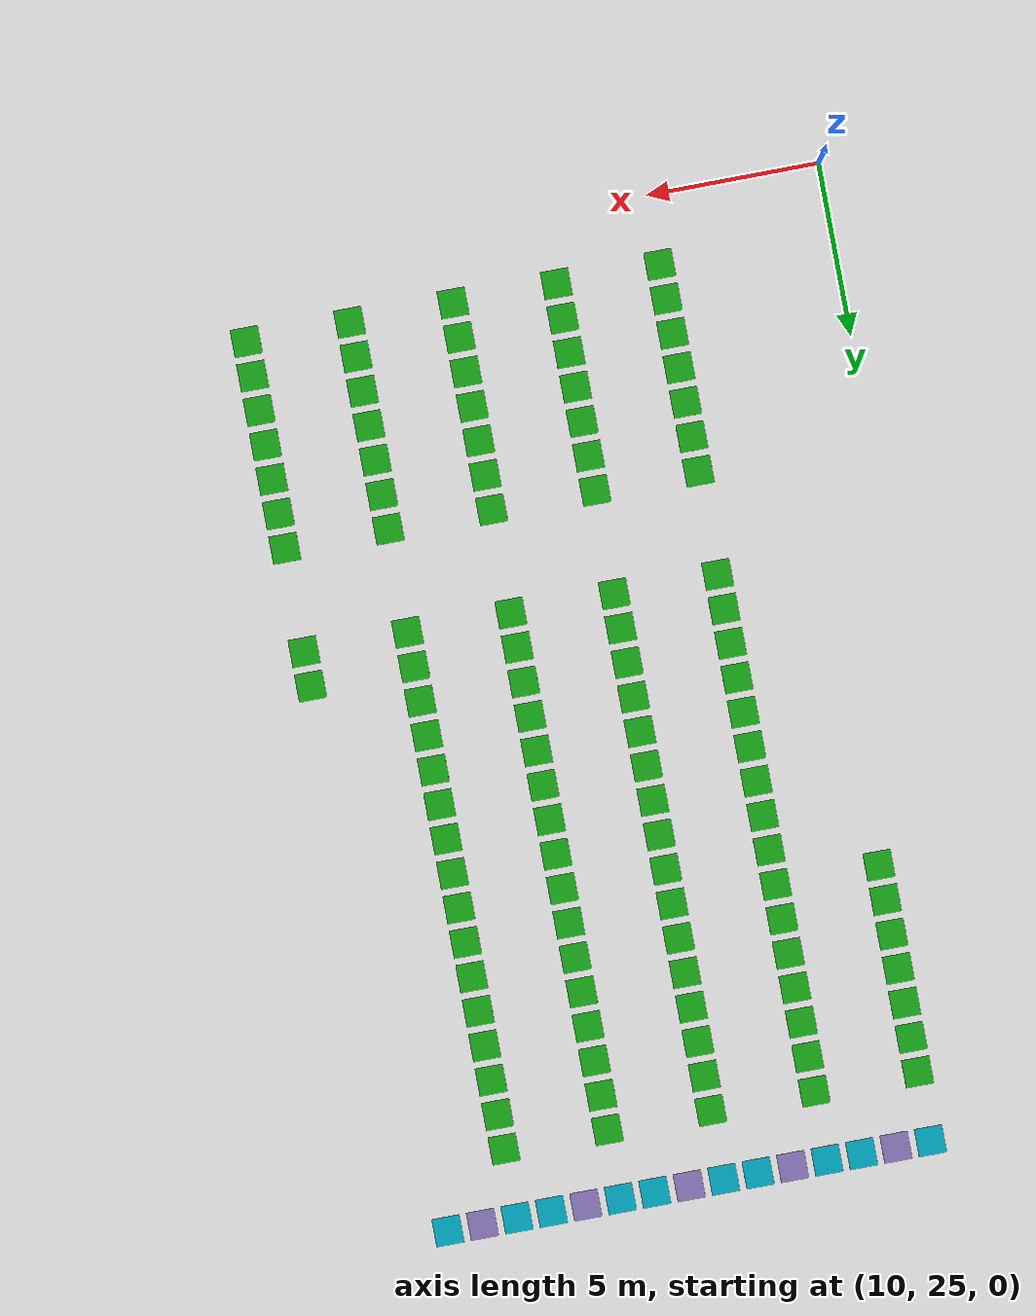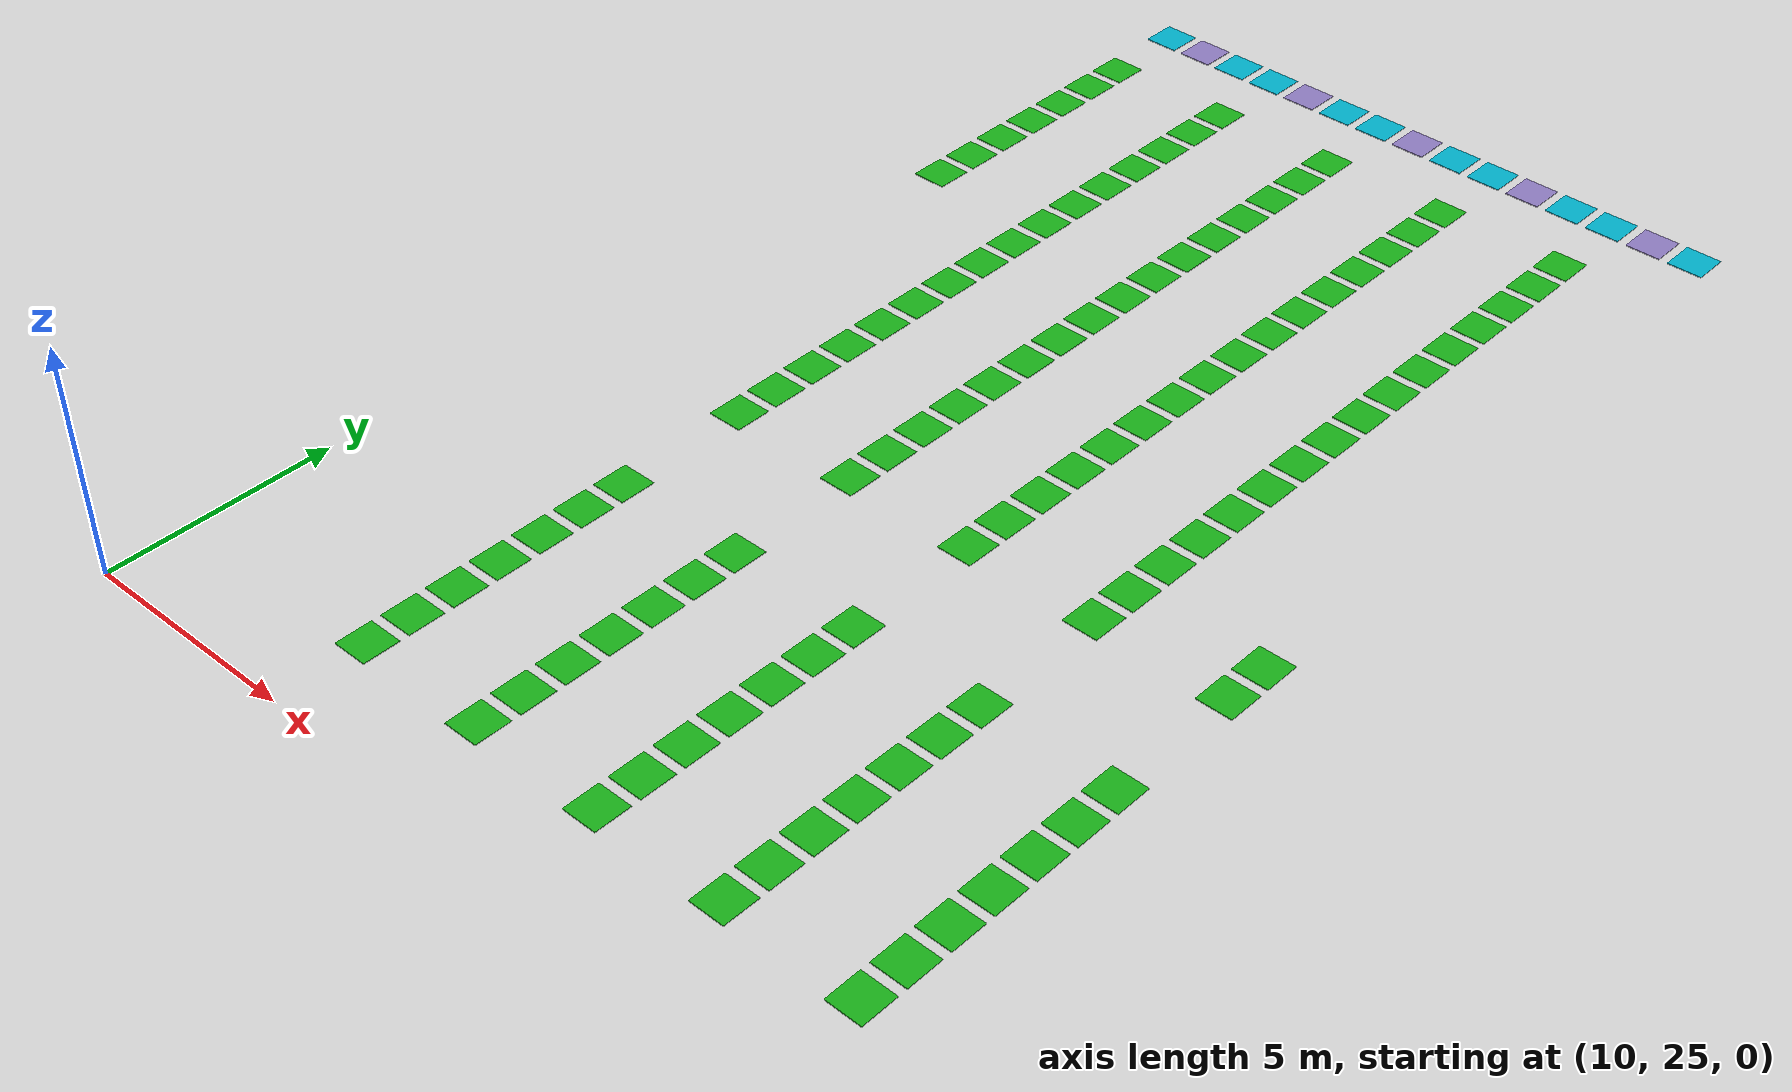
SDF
<sdf version="1.10">
 <world name="warehouse">
  <model name="charging_008">
   <static>true</static>
   <pose>12.0
        53.0
        0.02
        0 0 0</pose>
   <link name="link">
    <visual name="visual">
     <geometry><box><size>0.8
                0.8
                0.02</size></box></geometry>
     <material><ambient>0.00 0.70 0.80 1</ambient><diffuse>0.00 0.70 0.80 1</diffuse></material>
    </visual>
   </link>
  </model>
  <model name="charge_queue_004">
   <static>true</static>
   <pose>13.0
        53.0
        0.02
        0 0 0</pose>
   <link name="link">
    <visual name="visual">
     <geometry><box><size>0.8
                0.8
                0.02</size></box></geometry>
     <material><ambient>0.56 0.49 0.76 1</ambient><diffuse>0.56 0.49 0.76 1</diffuse></material>
    </visual>
   </link>
  </model>
  <model name="charging_009">
   <static>true</static>
   <pose>14.0
        53.0
        0.02
        0 0 0</pose>
   <link name="link">
    <visual name="visual">
     <geometry><box><size>0.8
                0.8
                0.02</size></box></geometry>
     <material><ambient>0.00 0.70 0.80 1</ambient><diffuse>0.00 0.70 0.80 1</diffuse></material>
    </visual>
   </link>
  </model>
  <model name="charging_010">
   <static>true</static>
   <pose>15.0
        53.0
        0.02
        0 0 0</pose>
   <link name="link">
    <visual name="visual">
     <geometry><box><size>0.8
                0.8
                0.02</size></box></geometry>
     <material><ambient>0.00 0.70 0.80 1</ambient><diffuse>0.00 0.70 0.80 1</diffuse></material>
    </visual>
   </link>
  </model>
  <model name="charge_queue_005">
   <static>true</static>
   <pose>16.0
        53.0
        0.02
        0 0 0</pose>
   <link name="link">
    <visual name="visual">
     <geometry><box><size>0.8
                0.8
                0.02</size></box></geometry>
     <material><ambient>0.56 0.49 0.76 1</ambient><diffuse>0.56 0.49 0.76 1</diffuse></material>
    </visual>
   </link>
  </model>
  <model name="charging_011">
   <static>true</static>
   <pose>17.0
        53.0
        0.02
        0 0 0</pose>
   <link name="link">
    <visual name="visual">
     <geometry><box><size>0.8
                0.8
                0.02</size></box></geometry>
     <material><ambient>0.00 0.70 0.80 1</ambient><diffuse>0.00 0.70 0.80 1</diffuse></material>
    </visual>
   </link>
  </model>
  <model name="charging_012">
   <static>true</static>
   <pose>18.0
        53.0
        0.02
        0 0 0</pose>
   <link name="link">
    <visual name="visual">
     <geometry><box><size>0.8
                0.8
                0.02</size></box></geometry>
     <material><ambient>0.00 0.70 0.80 1</ambient><diffuse>0.00 0.70 0.80 1</diffuse></material>
    </visual>
   </link>
  </model>
  <model name="charge_queue_006">
   <static>true</static>
   <pose>19.0
        53.0
        0.02
        0 0 0</pose>
   <link name="link">
    <visual name="visual">
     <geometry><box><size>0.8
                0.8
                0.02</size></box></geometry>
     <material><ambient>0.56 0.49 0.76 1</ambient><diffuse>0.56 0.49 0.76 1</diffuse></material>
    </visual>
   </link>
  </model>
  <model name="charging_013">
   <static>true</static>
   <pose>20.0
        53.0
        0.02
        0 0 0</pose>
   <link name="link">
    <visual name="visual">
     <geometry><box><size>0.8
                0.8
                0.02</size></box></geometry>
     <material><ambient>0.00 0.70 0.80 1</ambient><diffuse>0.00 0.70 0.80 1</diffuse></material>
    </visual>
   </link>
  </model>
  <model name="charging_014">
   <static>true</static>
   <pose>21.0
        53.0
        0.02
        0 0 0</pose>
   <link name="link">
    <visual name="visual">
     <geometry><box><size>0.8
                0.8
                0.02</size></box></geometry>
     <material><ambient>0.00 0.70 0.80 1</ambient><diffuse>0.00 0.70 0.80 1</diffuse></material>
    </visual>
   </link>
  </model>
  <model name="charge_queue_007">
   <static>true</static>
   <pose>22.0
        53.0
        0.02
        0 0 0</pose>
   <link name="link">
    <visual name="visual">
     <geometry><box><size>0.8
                0.8
                0.02</size></box></geometry>
     <material><ambient>0.56 0.49 0.76 1</ambient><diffuse>0.56 0.49 0.76 1</diffuse></material>
    </visual>
   </link>
  </model>
  <model name="charging_015">
   <static>true</static>
   <pose>23.0
        53.0
        0.02
        0 0 0</pose>
   <link name="link">
    <visual name="visual">
     <geometry><box><size>0.8
                0.8
                0.02</size></box></geometry>
     <material><ambient>0.00 0.70 0.80 1</ambient><diffuse>0.00 0.70 0.80 1</diffuse></material>
    </visual>
   </link>
  </model>
  <model name="charging_016">
   <static>true</static>
   <pose>24.0
        53.0
        0.02
        0 0 0</pose>
   <link name="link">
    <visual name="visual">
     <geometry><box><size>0.8
                0.8
                0.02</size></box></geometry>
     <material><ambient>0.00 0.70 0.80 1</ambient><diffuse>0.00 0.70 0.80 1</diffuse></material>
    </visual>
   </link>
  </model>
  <model name="charge_queue_008">
   <static>true</static>
   <pose>25.0
        53.0
        0.02
        0 0 0</pose>
   <link name="link">
    <visual name="visual">
     <geometry><box><size>0.8
                0.8
                0.02</size></box></geometry>
     <material><ambient>0.56 0.49 0.76 1</ambient><diffuse>0.56 0.49 0.76 1</diffuse></material>
    </visual>
   </link>
  </model>
  <model name="charging_017">
   <static>true</static>
   <pose>26.0
        53.0
        0.02
        0 0 0</pose>
   <link name="link">
    <visual name="visual">
     <geometry><box><size>0.8
                0.8
                0.02</size></box></geometry>
     <material><ambient>0.00 0.70 0.80 1</ambient><diffuse>0.00 0.70 0.80 1</diffuse></material>
    </visual>
   </link>
  </model>
  <model name="shelf_004">
   <static>true</static>
   <pose>12.0
        51.0
        0.02
        0 0 0</pose>
   <link name="link">
    <visual name="visual">
     <geometry><box><size>0.8
                0.8
                0.02</size></box></geometry>
     <material><ambient>0.10 0.70 0.10 1</ambient><diffuse>0.10 0.70 0.10 1</diffuse></material>
    </visual>
   </link>
  </model>
  <model name="shelf_005">
   <static>true</static>
   <pose>15.0
        51.0
        0.02
        0 0 0</pose>
   <link name="link">
    <visual name="visual">
     <geometry><box><size>0.8
                0.8
                0.02</size></box></geometry>
     <material><ambient>0.10 0.70 0.10 1</ambient><diffuse>0.10 0.70 0.10 1</diffuse></material>
    </visual>
   </link>
  </model>
  <model name="shelf_006">
   <static>true</static>
   <pose>18.0
        51.0
        0.02
        0 0 0</pose>
   <link name="link">
    <visual name="visual">
     <geometry><box><size>0.8
                0.8
                0.02</size></box></geometry>
     <material><ambient>0.10 0.70 0.10 1</ambient><diffuse>0.10 0.70 0.10 1</diffuse></material>
    </visual>
   </link>
  </model>
  <model name="shelf_007">
   <static>true</static>
   <pose>21.0
        51.0
        0.02
        0 0 0</pose>
   <link name="link">
    <visual name="visual">
     <geometry><box><size>0.8
                0.8
                0.02</size></box></geometry>
     <material><ambient>0.10 0.70 0.10 1</ambient><diffuse>0.10 0.70 0.10 1</diffuse></material>
    </visual>
   </link>
  </model>
  <model name="shelf_008">
   <static>true</static>
   <pose>24.0
        51.0
        0.02
        0 0 0</pose>
   <link name="link">
    <visual name="visual">
     <geometry><box><size>0.8
                0.8
                0.02</size></box></geometry>
     <material><ambient>0.10 0.70 0.10 1</ambient><diffuse>0.10 0.70 0.10 1</diffuse></material>
    </visual>
   </link>
  </model>
  <model name="shelf_016">
   <static>true</static>
   <pose>12.0
        50.0
        0.02
        0 0 0</pose>
   <link name="link">
    <visual name="visual">
     <geometry><box><size>0.8
                0.8
                0.02</size></box></geometry>
     <material><ambient>0.10 0.70 0.10 1</ambient><diffuse>0.10 0.70 0.10 1</diffuse></material>
    </visual>
   </link>
  </model>
  <model name="shelf_017">
   <static>true</static>
   <pose>15.0
        50.0
        0.02
        0 0 0</pose>
   <link name="link">
    <visual name="visual">
     <geometry><box><size>0.8
                0.8
                0.02</size></box></geometry>
     <material><ambient>0.10 0.70 0.10 1</ambient><diffuse>0.10 0.70 0.10 1</diffuse></material>
    </visual>
   </link>
  </model>
  <model name="shelf_018">
   <static>true</static>
   <pose>18.0
        50.0
        0.02
        0 0 0</pose>
   <link name="link">
    <visual name="visual">
     <geometry><box><size>0.8
                0.8
                0.02</size></box></geometry>
     <material><ambient>0.10 0.70 0.10 1</ambient><diffuse>0.10 0.70 0.10 1</diffuse></material>
    </visual>
   </link>
  </model>
  <model name="shelf_019">
   <static>true</static>
   <pose>21.0
        50.0
        0.02
        0 0 0</pose>
   <link name="link">
    <visual name="visual">
     <geometry><box><size>0.8
                0.8
                0.02</size></box></geometry>
     <material><ambient>0.10 0.70 0.10 1</ambient><diffuse>0.10 0.70 0.10 1</diffuse></material>
    </visual>
   </link>
  </model>
  <model name="shelf_020">
   <static>true</static>
   <pose>24.0
        50.0
        0.02
        0 0 0</pose>
   <link name="link">
    <visual name="visual">
     <geometry><box><size>0.8
                0.8
                0.02</size></box></geometry>
     <material><ambient>0.10 0.70 0.10 1</ambient><diffuse>0.10 0.70 0.10 1</diffuse></material>
    </visual>
   </link>
  </model>
  <model name="shelf_028">
   <static>true</static>
   <pose>12.0
        49.0
        0.02
        0 0 0</pose>
   <link name="link">
    <visual name="visual">
     <geometry><box><size>0.8
                0.8
                0.02</size></box></geometry>
     <material><ambient>0.10 0.70 0.10 1</ambient><diffuse>0.10 0.70 0.10 1</diffuse></material>
    </visual>
   </link>
  </model>
  <model name="shelf_029">
   <static>true</static>
   <pose>15.0
        49.0
        0.02
        0 0 0</pose>
   <link name="link">
    <visual name="visual">
     <geometry><box><size>0.8
                0.8
                0.02</size></box></geometry>
     <material><ambient>0.10 0.70 0.10 1</ambient><diffuse>0.10 0.70 0.10 1</diffuse></material>
    </visual>
   </link>
  </model>
  <model name="shelf_030">
   <static>true</static>
   <pose>18.0
        49.0
        0.02
        0 0 0</pose>
   <link name="link">
    <visual name="visual">
     <geometry><box><size>0.8
                0.8
                0.02</size></box></geometry>
     <material><ambient>0.10 0.70 0.10 1</ambient><diffuse>0.10 0.70 0.10 1</diffuse></material>
    </visual>
   </link>
  </model>
  <model name="shelf_031">
   <static>true</static>
   <pose>21.0
        49.0
        0.02
        0 0 0</pose>
   <link name="link">
    <visual name="visual">
     <geometry><box><size>0.8
                0.8
                0.02</size></box></geometry>
     <material><ambient>0.10 0.70 0.10 1</ambient><diffuse>0.10 0.70 0.10 1</diffuse></material>
    </visual>
   </link>
  </model>
  <model name="shelf_032">
   <static>true</static>
   <pose>24.0
        49.0
        0.02
        0 0 0</pose>
   <link name="link">
    <visual name="visual">
     <geometry><box><size>0.8
                0.8
                0.02</size></box></geometry>
     <material><ambient>0.10 0.70 0.10 1</ambient><diffuse>0.10 0.70 0.10 1</diffuse></material>
    </visual>
   </link>
  </model>
  <model name="shelf_040">
   <static>true</static>
   <pose>12.0
        48.0
        0.02
        0 0 0</pose>
   <link name="link">
    <visual name="visual">
     <geometry><box><size>0.8
                0.8
                0.02</size></box></geometry>
     <material><ambient>0.10 0.70 0.10 1</ambient><diffuse>0.10 0.70 0.10 1</diffuse></material>
    </visual>
   </link>
  </model>
  <model name="shelf_041">
   <static>true</static>
   <pose>15.0
        48.0
        0.02
        0 0 0</pose>
   <link name="link">
    <visual name="visual">
     <geometry><box><size>0.8
                0.8
                0.02</size></box></geometry>
     <material><ambient>0.10 0.70 0.10 1</ambient><diffuse>0.10 0.70 0.10 1</diffuse></material>
    </visual>
   </link>
  </model>
  <model name="shelf_042">
   <static>true</static>
   <pose>18.0
        48.0
        0.02
        0 0 0</pose>
   <link name="link">
    <visual name="visual">
     <geometry><box><size>0.8
                0.8
                0.02</size></box></geometry>
     <material><ambient>0.10 0.70 0.10 1</ambient><diffuse>0.10 0.70 0.10 1</diffuse></material>
    </visual>
   </link>
  </model>
  <model name="shelf_043">
   <static>true</static>
   <pose>21.0
        48.0
        0.02
        0 0 0</pose>
   <link name="link">
    <visual name="visual">
     <geometry><box><size>0.8
                0.8
                0.02</size></box></geometry>
     <material><ambient>0.10 0.70 0.10 1</ambient><diffuse>0.10 0.70 0.10 1</diffuse></material>
    </visual>
   </link>
  </model>
  <model name="shelf_044">
   <static>true</static>
   <pose>24.0
        48.0
        0.02
        0 0 0</pose>
   <link name="link">
    <visual name="visual">
     <geometry><box><size>0.8
                0.8
                0.02</size></box></geometry>
     <material><ambient>0.10 0.70 0.10 1</ambient><diffuse>0.10 0.70 0.10 1</diffuse></material>
    </visual>
   </link>
  </model>
  <model name="shelf_052">
   <static>true</static>
   <pose>12.0
        47.0
        0.02
        0 0 0</pose>
   <link name="link">
    <visual name="visual">
     <geometry><box><size>0.8
                0.8
                0.02</size></box></geometry>
     <material><ambient>0.10 0.70 0.10 1</ambient><diffuse>0.10 0.70 0.10 1</diffuse></material>
    </visual>
   </link>
  </model>
  <model name="shelf_053">
   <static>true</static>
   <pose>15.0
        47.0
        0.02
        0 0 0</pose>
   <link name="link">
    <visual name="visual">
     <geometry><box><size>0.8
                0.8
                0.02</size></box></geometry>
     <material><ambient>0.10 0.70 0.10 1</ambient><diffuse>0.10 0.70 0.10 1</diffuse></material>
    </visual>
   </link>
  </model>
  <model name="shelf_054">
   <static>true</static>
   <pose>18.0
        47.0
        0.02
        0 0 0</pose>
   <link name="link">
    <visual name="visual">
     <geometry><box><size>0.8
                0.8
                0.02</size></box></geometry>
     <material><ambient>0.10 0.70 0.10 1</ambient><diffuse>0.10 0.70 0.10 1</diffuse></material>
    </visual>
   </link>
  </model>
  <model name="shelf_055">
   <static>true</static>
   <pose>21.0
        47.0
        0.02
        0 0 0</pose>
   <link name="link">
    <visual name="visual">
     <geometry><box><size>0.8
                0.8
                0.02</size></box></geometry>
     <material><ambient>0.10 0.70 0.10 1</ambient><diffuse>0.10 0.70 0.10 1</diffuse></material>
    </visual>
   </link>
  </model>
  <model name="shelf_056">
   <static>true</static>
   <pose>24.0
        47.0
        0.02
        0 0 0</pose>
   <link name="link">
    <visual name="visual">
     <geometry><box><size>0.8
                0.8
                0.02</size></box></geometry>
     <material><ambient>0.10 0.70 0.10 1</ambient><diffuse>0.10 0.70 0.10 1</diffuse></material>
    </visual>
   </link>
  </model>
  <model name="shelf_064">
   <static>true</static>
   <pose>12.0
        46.0
        0.02
        0 0 0</pose>
   <link name="link">
    <visual name="visual">
     <geometry><box><size>0.8
                0.8
                0.02</size></box></geometry>
     <material><ambient>0.10 0.70 0.10 1</ambient><diffuse>0.10 0.70 0.10 1</diffuse></material>
    </visual>
   </link>
  </model>
  <model name="shelf_065">
   <static>true</static>
   <pose>15.0
        46.0
        0.02
        0 0 0</pose>
   <link name="link">
    <visual name="visual">
     <geometry><box><size>0.8
                0.8
                0.02</size></box></geometry>
     <material><ambient>0.10 0.70 0.10 1</ambient><diffuse>0.10 0.70 0.10 1</diffuse></material>
    </visual>
   </link>
  </model>
  <model name="shelf_066">
   <static>true</static>
   <pose>18.0
        46.0
        0.02
        0 0 0</pose>
   <link name="link">
    <visual name="visual">
     <geometry><box><size>0.8
                0.8
                0.02</size></box></geometry>
     <material><ambient>0.10 0.70 0.10 1</ambient><diffuse>0.10 0.70 0.10 1</diffuse></material>
    </visual>
   </link>
  </model>
  <model name="shelf_067">
   <static>true</static>
   <pose>21.0
        46.0
        0.02
        0 0 0</pose>
   <link name="link">
    <visual name="visual">
     <geometry><box><size>0.8
                0.8
                0.02</size></box></geometry>
     <material><ambient>0.10 0.70 0.10 1</ambient><diffuse>0.10 0.70 0.10 1</diffuse></material>
    </visual>
   </link>
  </model>
  <model name="shelf_068">
   <static>true</static>
   <pose>24.0
        46.0
        0.02
        0 0 0</pose>
   <link name="link">
    <visual name="visual">
     <geometry><box><size>0.8
                0.8
                0.02</size></box></geometry>
     <material><ambient>0.10 0.70 0.10 1</ambient><diffuse>0.10 0.70 0.10 1</diffuse></material>
    </visual>
   </link>
  </model>
  <model name="shelf_076">
   <static>true</static>
   <pose>12.0
        45.0
        0.02
        0 0 0</pose>
   <link name="link">
    <visual name="visual">
     <geometry><box><size>0.8
                0.8
                0.02</size></box></geometry>
     <material><ambient>0.10 0.70 0.10 1</ambient><diffuse>0.10 0.70 0.10 1</diffuse></material>
    </visual>
   </link>
  </model>
  <model name="shelf_077">
   <static>true</static>
   <pose>15.0
        45.0
        0.02
        0 0 0</pose>
   <link name="link">
    <visual name="visual">
     <geometry><box><size>0.8
                0.8
                0.02</size></box></geometry>
     <material><ambient>0.10 0.70 0.10 1</ambient><diffuse>0.10 0.70 0.10 1</diffuse></material>
    </visual>
   </link>
  </model>
  <model name="shelf_078">
   <static>true</static>
   <pose>18.0
        45.0
        0.02
        0 0 0</pose>
   <link name="link">
    <visual name="visual">
     <geometry><box><size>0.8
                0.8
                0.02</size></box></geometry>
     <material><ambient>0.10 0.70 0.10 1</ambient><diffuse>0.10 0.70 0.10 1</diffuse></material>
    </visual>
   </link>
  </model>
  <model name="shelf_079">
   <static>true</static>
   <pose>21.0
        45.0
        0.02
        0 0 0</pose>
   <link name="link">
    <visual name="visual">
     <geometry><box><size>0.8
                0.8
                0.02</size></box></geometry>
     <material><ambient>0.10 0.70 0.10 1</ambient><diffuse>0.10 0.70 0.10 1</diffuse></material>
    </visual>
   </link>
  </model>
  <model name="shelf_080">
   <static>true</static>
   <pose>24.0
        45.0
        0.02
        0 0 0</pose>
   <link name="link">
    <visual name="visual">
     <geometry><box><size>0.8
                0.8
                0.02</size></box></geometry>
     <material><ambient>0.10 0.70 0.10 1</ambient><diffuse>0.10 0.70 0.10 1</diffuse></material>
    </visual>
   </link>
  </model>
  <model name="shelf_089">
   <static>true</static>
   <pose>15.0
        44.0
        0.02
        0 0 0</pose>
   <link name="link">
    <visual name="visual">
     <geometry><box><size>0.8
                0.8
                0.02</size></box></geometry>
     <material><ambient>0.10 0.70 0.10 1</ambient><diffuse>0.10 0.70 0.10 1</diffuse></material>
    </visual>
   </link>
  </model>
  <model name="shelf_090">
   <static>true</static>
   <pose>18.0
        44.0
        0.02
        0 0 0</pose>
   <link name="link">
    <visual name="visual">
     <geometry><box><size>0.8
                0.8
                0.02</size></box></geometry>
     <material><ambient>0.10 0.70 0.10 1</ambient><diffuse>0.10 0.70 0.10 1</diffuse></material>
    </visual>
   </link>
  </model>
  <model name="shelf_091">
   <static>true</static>
   <pose>21.0
        44.0
        0.02
        0 0 0</pose>
   <link name="link">
    <visual name="visual">
     <geometry><box><size>0.8
                0.8
                0.02</size></box></geometry>
     <material><ambient>0.10 0.70 0.10 1</ambient><diffuse>0.10 0.70 0.10 1</diffuse></material>
    </visual>
   </link>
  </model>
  <model name="shelf_092">
   <static>true</static>
   <pose>24.0
        44.0
        0.02
        0 0 0</pose>
   <link name="link">
    <visual name="visual">
     <geometry><box><size>0.8
                0.8
                0.02</size></box></geometry>
     <material><ambient>0.10 0.70 0.10 1</ambient><diffuse>0.10 0.70 0.10 1</diffuse></material>
    </visual>
   </link>
  </model>
  <model name="shelf_101">
   <static>true</static>
   <pose>15.0
        43.0
        0.02
        0 0 0</pose>
   <link name="link">
    <visual name="visual">
     <geometry><box><size>0.8
                0.8
                0.02</size></box></geometry>
     <material><ambient>0.10 0.70 0.10 1</ambient><diffuse>0.10 0.70 0.10 1</diffuse></material>
    </visual>
   </link>
  </model>
  <model name="shelf_102">
   <static>true</static>
   <pose>18.0
        43.0
        0.02
        0 0 0</pose>
   <link name="link">
    <visual name="visual">
     <geometry><box><size>0.8
                0.8
                0.02</size></box></geometry>
     <material><ambient>0.10 0.70 0.10 1</ambient><diffuse>0.10 0.70 0.10 1</diffuse></material>
    </visual>
   </link>
  </model>
  <model name="shelf_103">
   <static>true</static>
   <pose>21.0
        43.0
        0.02
        0 0 0</pose>
   <link name="link">
    <visual name="visual">
     <geometry><box><size>0.8
                0.8
                0.02</size></box></geometry>
     <material><ambient>0.10 0.70 0.10 1</ambient><diffuse>0.10 0.70 0.10 1</diffuse></material>
    </visual>
   </link>
  </model>
  <model name="shelf_104">
   <static>true</static>
   <pose>24.0
        43.0
        0.02
        0 0 0</pose>
   <link name="link">
    <visual name="visual">
     <geometry><box><size>0.8
                0.8
                0.02</size></box></geometry>
     <material><ambient>0.10 0.70 0.10 1</ambient><diffuse>0.10 0.70 0.10 1</diffuse></material>
    </visual>
   </link>
  </model>
  <model name="shelf_113">
   <static>true</static>
   <pose>15.0
        42.0
        0.02
        0 0 0</pose>
   <link name="link">
    <visual name="visual">
     <geometry><box><size>0.8
                0.8
                0.02</size></box></geometry>
     <material><ambient>0.10 0.70 0.10 1</ambient><diffuse>0.10 0.70 0.10 1</diffuse></material>
    </visual>
   </link>
  </model>
  <model name="shelf_114">
   <static>true</static>
   <pose>18.0
        42.0
        0.02
        0 0 0</pose>
   <link name="link">
    <visual name="visual">
     <geometry><box><size>0.8
                0.8
                0.02</size></box></geometry>
     <material><ambient>0.10 0.70 0.10 1</ambient><diffuse>0.10 0.70 0.10 1</diffuse></material>
    </visual>
   </link>
  </model>
  <model name="shelf_115">
   <static>true</static>
   <pose>21.0
        42.0
        0.02
        0 0 0</pose>
   <link name="link">
    <visual name="visual">
     <geometry><box><size>0.8
                0.8
                0.02</size></box></geometry>
     <material><ambient>0.10 0.70 0.10 1</ambient><diffuse>0.10 0.70 0.10 1</diffuse></material>
    </visual>
   </link>
  </model>
  <model name="shelf_116">
   <static>true</static>
   <pose>24.0
        42.0
        0.02
        0 0 0</pose>
   <link name="link">
    <visual name="visual">
     <geometry><box><size>0.8
                0.8
                0.02</size></box></geometry>
     <material><ambient>0.10 0.70 0.10 1</ambient><diffuse>0.10 0.70 0.10 1</diffuse></material>
    </visual>
   </link>
  </model>
  <model name="shelf_125">
   <static>true</static>
   <pose>15.0
        41.0
        0.02
        0 0 0</pose>
   <link name="link">
    <visual name="visual">
     <geometry><box><size>0.8
                0.8
                0.02</size></box></geometry>
     <material><ambient>0.10 0.70 0.10 1</ambient><diffuse>0.10 0.70 0.10 1</diffuse></material>
    </visual>
   </link>
  </model>
  <model name="shelf_126">
   <static>true</static>
   <pose>18.0
        41.0
        0.02
        0 0 0</pose>
   <link name="link">
    <visual name="visual">
     <geometry><box><size>0.8
                0.8
                0.02</size></box></geometry>
     <material><ambient>0.10 0.70 0.10 1</ambient><diffuse>0.10 0.70 0.10 1</diffuse></material>
    </visual>
   </link>
  </model>
  <model name="shelf_127">
   <static>true</static>
   <pose>21.0
        41.0
        0.02
        0 0 0</pose>
   <link name="link">
    <visual name="visual">
     <geometry><box><size>0.8
                0.8
                0.02</size></box></geometry>
     <material><ambient>0.10 0.70 0.10 1</ambient><diffuse>0.10 0.70 0.10 1</diffuse></material>
    </visual>
   </link>
  </model>
  <model name="shelf_128">
   <static>true</static>
   <pose>24.0
        41.0
        0.02
        0 0 0</pose>
   <link name="link">
    <visual name="visual">
     <geometry><box><size>0.8
                0.8
                0.02</size></box></geometry>
     <material><ambient>0.10 0.70 0.10 1</ambient><diffuse>0.10 0.70 0.10 1</diffuse></material>
    </visual>
   </link>
  </model>
  <model name="shelf_137">
   <static>true</static>
   <pose>15.0
        40.0
        0.02
        0 0 0</pose>
   <link name="link">
    <visual name="visual">
     <geometry><box><size>0.8
                0.8
                0.02</size></box></geometry>
     <material><ambient>0.10 0.70 0.10 1</ambient><diffuse>0.10 0.70 0.10 1</diffuse></material>
    </visual>
   </link>
  </model>
  <model name="shelf_138">
   <static>true</static>
   <pose>18.0
        40.0
        0.02
        0 0 0</pose>
   <link name="link">
    <visual name="visual">
     <geometry><box><size>0.8
                0.8
                0.02</size></box></geometry>
     <material><ambient>0.10 0.70 0.10 1</ambient><diffuse>0.10 0.70 0.10 1</diffuse></material>
    </visual>
   </link>
  </model>
  <model name="shelf_139">
   <static>true</static>
   <pose>21.0
        40.0
        0.02
        0 0 0</pose>
   <link name="link">
    <visual name="visual">
     <geometry><box><size>0.8
                0.8
                0.02</size></box></geometry>
     <material><ambient>0.10 0.70 0.10 1</ambient><diffuse>0.10 0.70 0.10 1</diffuse></material>
    </visual>
   </link>
  </model>
  <model name="shelf_140">
   <static>true</static>
   <pose>24.0
        40.0
        0.02
        0 0 0</pose>
   <link name="link">
    <visual name="visual">
     <geometry><box><size>0.8
                0.8
                0.02</size></box></geometry>
     <material><ambient>0.10 0.70 0.10 1</ambient><diffuse>0.10 0.70 0.10 1</diffuse></material>
    </visual>
   </link>
  </model>
  <model name="shelf_149">
   <static>true</static>
   <pose>15.0
        39.0
        0.02
        0 0 0</pose>
   <link name="link">
    <visual name="visual">
     <geometry><box><size>0.8
                0.8
                0.02</size></box></geometry>
     <material><ambient>0.10 0.70 0.10 1</ambient><diffuse>0.10 0.70 0.10 1</diffuse></material>
    </visual>
   </link>
  </model>
  <model name="shelf_150">
   <static>true</static>
   <pose>18.0
        39.0
        0.02
        0 0 0</pose>
   <link name="link">
    <visual name="visual">
     <geometry><box><size>0.8
                0.8
                0.02</size></box></geometry>
     <material><ambient>0.10 0.70 0.10 1</ambient><diffuse>0.10 0.70 0.10 1</diffuse></material>
    </visual>
   </link>
  </model>
  <model name="shelf_151">
   <static>true</static>
   <pose>21.0
        39.0
        0.02
        0 0 0</pose>
   <link name="link">
    <visual name="visual">
     <geometry><box><size>0.8
                0.8
                0.02</size></box></geometry>
     <material><ambient>0.10 0.70 0.10 1</ambient><diffuse>0.10 0.70 0.10 1</diffuse></material>
    </visual>
   </link>
  </model>
  <model name="shelf_152">
   <static>true</static>
   <pose>24.0
        39.0
        0.02
        0 0 0</pose>
   <link name="link">
    <visual name="visual">
     <geometry><box><size>0.8
                0.8
                0.02</size></box></geometry>
     <material><ambient>0.10 0.70 0.10 1</ambient><diffuse>0.10 0.70 0.10 1</diffuse></material>
    </visual>
   </link>
  </model>
  <model name="shelf_161">
   <static>true</static>
   <pose>15.0
        38.0
        0.02
        0 0 0</pose>
   <link name="link">
    <visual name="visual">
     <geometry><box><size>0.8
                0.8
                0.02</size></box></geometry>
     <material><ambient>0.10 0.70 0.10 1</ambient><diffuse>0.10 0.70 0.10 1</diffuse></material>
    </visual>
   </link>
  </model>
  <model name="shelf_162">
   <static>true</static>
   <pose>18.0
        38.0
        0.02
        0 0 0</pose>
   <link name="link">
    <visual name="visual">
     <geometry><box><size>0.8
                0.8
                0.02</size></box></geometry>
     <material><ambient>0.10 0.70 0.10 1</ambient><diffuse>0.10 0.70 0.10 1</diffuse></material>
    </visual>
   </link>
  </model>
  <model name="shelf_163">
   <static>true</static>
   <pose>21.0
        38.0
        0.02
        0 0 0</pose>
   <link name="link">
    <visual name="visual">
     <geometry><box><size>0.8
                0.8
                0.02</size></box></geometry>
     <material><ambient>0.10 0.70 0.10 1</ambient><diffuse>0.10 0.70 0.10 1</diffuse></material>
    </visual>
   </link>
  </model>
  <model name="shelf_164">
   <static>true</static>
   <pose>24.0
        38.0
        0.02
        0 0 0</pose>
   <link name="link">
    <visual name="visual">
     <geometry><box><size>0.8
                0.8
                0.02</size></box></geometry>
     <material><ambient>0.10 0.70 0.10 1</ambient><diffuse>0.10 0.70 0.10 1</diffuse></material>
    </visual>
   </link>
  </model>
  <model name="shelf_173">
   <static>true</static>
   <pose>15.0
        37.0
        0.02
        0 0 0</pose>
   <link name="link">
    <visual name="visual">
     <geometry><box><size>0.8
                0.8
                0.02</size></box></geometry>
     <material><ambient>0.10 0.70 0.10 1</ambient><diffuse>0.10 0.70 0.10 1</diffuse></material>
    </visual>
   </link>
  </model>
  <model name="shelf_174">
   <static>true</static>
   <pose>18.0
        37.0
        0.02
        0 0 0</pose>
   <link name="link">
    <visual name="visual">
     <geometry><box><size>0.8
                0.8
                0.02</size></box></geometry>
     <material><ambient>0.10 0.70 0.10 1</ambient><diffuse>0.10 0.70 0.10 1</diffuse></material>
    </visual>
   </link>
  </model>
  <model name="shelf_175">
   <static>true</static>
   <pose>21.0
        37.0
        0.02
        0 0 0</pose>
   <link name="link">
    <visual name="visual">
     <geometry><box><size>0.8
                0.8
                0.02</size></box></geometry>
     <material><ambient>0.10 0.70 0.10 1</ambient><diffuse>0.10 0.70 0.10 1</diffuse></material>
    </visual>
   </link>
  </model>
  <model name="shelf_176">
   <static>true</static>
   <pose>24.0
        37.0
        0.02
        0 0 0</pose>
   <link name="link">
    <visual name="visual">
     <geometry><box><size>0.8
                0.8
                0.02</size></box></geometry>
     <material><ambient>0.10 0.70 0.10 1</ambient><diffuse>0.10 0.70 0.10 1</diffuse></material>
    </visual>
   </link>
  </model>
  <model name="shelf_177">
   <static>true</static>
   <pose>27.0
        37.0
        0.02
        0 0 0</pose>
   <link name="link">
    <visual name="visual">
     <geometry><box><size>0.8
                0.8
                0.02</size></box></geometry>
     <material><ambient>0.10 0.70 0.10 1</ambient><diffuse>0.10 0.70 0.10 1</diffuse></material>
    </visual>
   </link>
  </model>
  <model name="shelf_185">
   <static>true</static>
   <pose>15.0
        36.0
        0.02
        0 0 0</pose>
   <link name="link">
    <visual name="visual">
     <geometry><box><size>0.8
                0.8
                0.02</size></box></geometry>
     <material><ambient>0.10 0.70 0.10 1</ambient><diffuse>0.10 0.70 0.10 1</diffuse></material>
    </visual>
   </link>
  </model>
  <model name="shelf_186">
   <static>true</static>
   <pose>18.0
        36.0
        0.02
        0 0 0</pose>
   <link name="link">
    <visual name="visual">
     <geometry><box><size>0.8
                0.8
                0.02</size></box></geometry>
     <material><ambient>0.10 0.70 0.10 1</ambient><diffuse>0.10 0.70 0.10 1</diffuse></material>
    </visual>
   </link>
  </model>
  <model name="shelf_187">
   <static>true</static>
   <pose>21.0
        36.0
        0.02
        0 0 0</pose>
   <link name="link">
    <visual name="visual">
     <geometry><box><size>0.8
                0.8
                0.02</size></box></geometry>
     <material><ambient>0.10 0.70 0.10 1</ambient><diffuse>0.10 0.70 0.10 1</diffuse></material>
    </visual>
   </link>
  </model>
  <model name="shelf_188">
   <static>true</static>
   <pose>24.0
        36.0
        0.02
        0 0 0</pose>
   <link name="link">
    <visual name="visual">
     <geometry><box><size>0.8
                0.8
                0.02</size></box></geometry>
     <material><ambient>0.10 0.70 0.10 1</ambient><diffuse>0.10 0.70 0.10 1</diffuse></material>
    </visual>
   </link>
  </model>
  <model name="shelf_189">
   <static>true</static>
   <pose>27.0
        36.0
        0.02
        0 0 0</pose>
   <link name="link">
    <visual name="visual">
     <geometry><box><size>0.8
                0.8
                0.02</size></box></geometry>
     <material><ambient>0.10 0.70 0.10 1</ambient><diffuse>0.10 0.70 0.10 1</diffuse></material>
    </visual>
   </link>
  </model>
  <model name="shelf_197">
   <static>true</static>
   <pose>15.0
        33.0
        0.02
        0 0 0</pose>
   <link name="link">
    <visual name="visual">
     <geometry><box><size>0.8
                0.8
                0.02</size></box></geometry>
     <material><ambient>0.10 0.70 0.10 1</ambient><diffuse>0.10 0.70 0.10 1</diffuse></material>
    </visual>
   </link>
  </model>
  <model name="shelf_198">
   <static>true</static>
   <pose>18.0
        33.0
        0.02
        0 0 0</pose>
   <link name="link">
    <visual name="visual">
     <geometry><box><size>0.8
                0.8
                0.02</size></box></geometry>
     <material><ambient>0.10 0.70 0.10 1</ambient><diffuse>0.10 0.70 0.10 1</diffuse></material>
    </visual>
   </link>
  </model>
  <model name="shelf_199">
   <static>true</static>
   <pose>21.0
        33.0
        0.02
        0 0 0</pose>
   <link name="link">
    <visual name="visual">
     <geometry><box><size>0.8
                0.8
                0.02</size></box></geometry>
     <material><ambient>0.10 0.70 0.10 1</ambient><diffuse>0.10 0.70 0.10 1</diffuse></material>
    </visual>
   </link>
  </model>
  <model name="shelf_200">
   <static>true</static>
   <pose>24.0
        33.0
        0.02
        0 0 0</pose>
   <link name="link">
    <visual name="visual">
     <geometry><box><size>0.8
                0.8
                0.02</size></box></geometry>
     <material><ambient>0.10 0.70 0.10 1</ambient><diffuse>0.10 0.70 0.10 1</diffuse></material>
    </visual>
   </link>
  </model>
  <model name="shelf_201">
   <static>true</static>
   <pose>27.0
        33.0
        0.02
        0 0 0</pose>
   <link name="link">
    <visual name="visual">
     <geometry><box><size>0.8
                0.8
                0.02</size></box></geometry>
     <material><ambient>0.10 0.70 0.10 1</ambient><diffuse>0.10 0.70 0.10 1</diffuse></material>
    </visual>
   </link>
  </model>
  <model name="shelf_209">
   <static>true</static>
   <pose>15.0
        32.0
        0.02
        0 0 0</pose>
   <link name="link">
    <visual name="visual">
     <geometry><box><size>0.8
                0.8
                0.02</size></box></geometry>
     <material><ambient>0.10 0.70 0.10 1</ambient><diffuse>0.10 0.70 0.10 1</diffuse></material>
    </visual>
   </link>
  </model>
  <model name="shelf_210">
   <static>true</static>
   <pose>18.0
        32.0
        0.02
        0 0 0</pose>
   <link name="link">
    <visual name="visual">
     <geometry><box><size>0.8
                0.8
                0.02</size></box></geometry>
     <material><ambient>0.10 0.70 0.10 1</ambient><diffuse>0.10 0.70 0.10 1</diffuse></material>
    </visual>
   </link>
  </model>
  <model name="shelf_211">
   <static>true</static>
   <pose>21.0
        32.0
        0.02
        0 0 0</pose>
   <link name="link">
    <visual name="visual">
     <geometry><box><size>0.8
                0.8
                0.02</size></box></geometry>
     <material><ambient>0.10 0.70 0.10 1</ambient><diffuse>0.10 0.70 0.10 1</diffuse></material>
    </visual>
   </link>
  </model>
  <model name="shelf_212">
   <static>true</static>
   <pose>24.0
        32.0
        0.02
        0 0 0</pose>
   <link name="link">
    <visual name="visual">
     <geometry><box><size>0.8
                0.8
                0.02</size></box></geometry>
     <material><ambient>0.10 0.70 0.10 1</ambient><diffuse>0.10 0.70 0.10 1</diffuse></material>
    </visual>
   </link>
  </model>
  <model name="shelf_213">
   <static>true</static>
   <pose>27.0
        32.0
        0.02
        0 0 0</pose>
   <link name="link">
    <visual name="visual">
     <geometry><box><size>0.8
                0.8
                0.02</size></box></geometry>
     <material><ambient>0.10 0.70 0.10 1</ambient><diffuse>0.10 0.70 0.10 1</diffuse></material>
    </visual>
   </link>
  </model>
  <model name="shelf_221">
   <static>true</static>
   <pose>15.0
        31.0
        0.02
        0 0 0</pose>
   <link name="link">
    <visual name="visual">
     <geometry><box><size>0.8
                0.8
                0.02</size></box></geometry>
     <material><ambient>0.10 0.70 0.10 1</ambient><diffuse>0.10 0.70 0.10 1</diffuse></material>
    </visual>
   </link>
  </model>
  <model name="shelf_222">
   <static>true</static>
   <pose>18.0
        31.0
        0.02
        0 0 0</pose>
   <link name="link">
    <visual name="visual">
     <geometry><box><size>0.8
                0.8
                0.02</size></box></geometry>
     <material><ambient>0.10 0.70 0.10 1</ambient><diffuse>0.10 0.70 0.10 1</diffuse></material>
    </visual>
   </link>
  </model>
  <model name="shelf_223">
   <static>true</static>
   <pose>21.0
        31.0
        0.02
        0 0 0</pose>
   <link name="link">
    <visual name="visual">
     <geometry><box><size>0.8
                0.8
                0.02</size></box></geometry>
     <material><ambient>0.10 0.70 0.10 1</ambient><diffuse>0.10 0.70 0.10 1</diffuse></material>
    </visual>
   </link>
  </model>
  <model name="shelf_224">
   <static>true</static>
   <pose>24.0
        31.0
        0.02
        0 0 0</pose>
   <link name="link">
    <visual name="visual">
     <geometry><box><size>0.8
                0.8
                0.02</size></box></geometry>
     <material><ambient>0.10 0.70 0.10 1</ambient><diffuse>0.10 0.70 0.10 1</diffuse></material>
    </visual>
   </link>
  </model>
  <model name="shelf_225">
   <static>true</static>
   <pose>27.0
        31.0
        0.02
        0 0 0</pose>
   <link name="link">
    <visual name="visual">
     <geometry><box><size>0.8
                0.8
                0.02</size></box></geometry>
     <material><ambient>0.10 0.70 0.10 1</ambient><diffuse>0.10 0.70 0.10 1</diffuse></material>
    </visual>
   </link>
  </model>
  <model name="shelf_233">
   <static>true</static>
   <pose>15.0
        30.0
        0.02
        0 0 0</pose>
   <link name="link">
    <visual name="visual">
     <geometry><box><size>0.8
                0.8
                0.02</size></box></geometry>
     <material><ambient>0.10 0.70 0.10 1</ambient><diffuse>0.10 0.70 0.10 1</diffuse></material>
    </visual>
   </link>
  </model>
  <model name="shelf_234">
   <static>true</static>
   <pose>18.0
        30.0
        0.02
        0 0 0</pose>
   <link name="link">
    <visual name="visual">
     <geometry><box><size>0.8
                0.8
                0.02</size></box></geometry>
     <material><ambient>0.10 0.70 0.10 1</ambient><diffuse>0.10 0.70 0.10 1</diffuse></material>
    </visual>
   </link>
  </model>
  <model name="shelf_235">
   <static>true</static>
   <pose>21.0
        30.0
        0.02
        0 0 0</pose>
   <link name="link">
    <visual name="visual">
     <geometry><box><size>0.8
                0.8
                0.02</size></box></geometry>
     <material><ambient>0.10 0.70 0.10 1</ambient><diffuse>0.10 0.70 0.10 1</diffuse></material>
    </visual>
   </link>
  </model>
  <model name="shelf_236">
   <static>true</static>
   <pose>24.0
        30.0
        0.02
        0 0 0</pose>
   <link name="link">
    <visual name="visual">
     <geometry><box><size>0.8
                0.8
                0.02</size></box></geometry>
     <material><ambient>0.10 0.70 0.10 1</ambient><diffuse>0.10 0.70 0.10 1</diffuse></material>
    </visual>
   </link>
  </model>
  <model name="shelf_237">
   <static>true</static>
   <pose>27.0
        30.0
        0.02
        0 0 0</pose>
   <link name="link">
    <visual name="visual">
     <geometry><box><size>0.8
                0.8
                0.02</size></box></geometry>
     <material><ambient>0.10 0.70 0.10 1</ambient><diffuse>0.10 0.70 0.10 1</diffuse></material>
    </visual>
   </link>
  </model>
  <model name="shelf_245">
   <static>true</static>
   <pose>15.0
        29.0
        0.02
        0 0 0</pose>
   <link name="link">
    <visual name="visual">
     <geometry><box><size>0.8
                0.8
                0.02</size></box></geometry>
     <material><ambient>0.10 0.70 0.10 1</ambient><diffuse>0.10 0.70 0.10 1</diffuse></material>
    </visual>
   </link>
  </model>
  <model name="shelf_246">
   <static>true</static>
   <pose>18.0
        29.0
        0.02
        0 0 0</pose>
   <link name="link">
    <visual name="visual">
     <geometry><box><size>0.8
                0.8
                0.02</size></box></geometry>
     <material><ambient>0.10 0.70 0.10 1</ambient><diffuse>0.10 0.70 0.10 1</diffuse></material>
    </visual>
   </link>
  </model>
  <model name="shelf_247">
   <static>true</static>
   <pose>21.0
        29.0
        0.02
        0 0 0</pose>
   <link name="link">
    <visual name="visual">
     <geometry><box><size>0.8
                0.8
                0.02</size></box></geometry>
     <material><ambient>0.10 0.70 0.10 1</ambient><diffuse>0.10 0.70 0.10 1</diffuse></material>
    </visual>
   </link>
  </model>
  <model name="shelf_248">
   <static>true</static>
   <pose>24.0
        29.0
        0.02
        0 0 0</pose>
   <link name="link">
    <visual name="visual">
     <geometry><box><size>0.8
                0.8
                0.02</size></box></geometry>
     <material><ambient>0.10 0.70 0.10 1</ambient><diffuse>0.10 0.70 0.10 1</diffuse></material>
    </visual>
   </link>
  </model>
  <model name="shelf_249">
   <static>true</static>
   <pose>27.0
        29.0
        0.02
        0 0 0</pose>
   <link name="link">
    <visual name="visual">
     <geometry><box><size>0.8
                0.8
                0.02</size></box></geometry>
     <material><ambient>0.10 0.70 0.10 1</ambient><diffuse>0.10 0.70 0.10 1</diffuse></material>
    </visual>
   </link>
  </model>
  <model name="shelf_257">
   <static>true</static>
   <pose>15.0
        28.0
        0.02
        0 0 0</pose>
   <link name="link">
    <visual name="visual">
     <geometry><box><size>0.8
                0.8
                0.02</size></box></geometry>
     <material><ambient>0.10 0.70 0.10 1</ambient><diffuse>0.10 0.70 0.10 1</diffuse></material>
    </visual>
   </link>
  </model>
  <model name="shelf_258">
   <static>true</static>
   <pose>18.0
        28.0
        0.02
        0 0 0</pose>
   <link name="link">
    <visual name="visual">
     <geometry><box><size>0.8
                0.8
                0.02</size></box></geometry>
     <material><ambient>0.10 0.70 0.10 1</ambient><diffuse>0.10 0.70 0.10 1</diffuse></material>
    </visual>
   </link>
  </model>
  <model name="shelf_259">
   <static>true</static>
   <pose>21.0
        28.0
        0.02
        0 0 0</pose>
   <link name="link">
    <visual name="visual">
     <geometry><box><size>0.8
                0.8
                0.02</size></box></geometry>
     <material><ambient>0.10 0.70 0.10 1</ambient><diffuse>0.10 0.70 0.10 1</diffuse></material>
    </visual>
   </link>
  </model>
  <model name="shelf_260">
   <static>true</static>
   <pose>24.0
        28.0
        0.02
        0 0 0</pose>
   <link name="link">
    <visual name="visual">
     <geometry><box><size>0.8
                0.8
                0.02</size></box></geometry>
     <material><ambient>0.10 0.70 0.10 1</ambient><diffuse>0.10 0.70 0.10 1</diffuse></material>
    </visual>
   </link>
  </model>
  <model name="shelf_261">
   <static>true</static>
   <pose>27.0
        28.0
        0.02
        0 0 0</pose>
   <link name="link">
    <visual name="visual">
     <geometry><box><size>0.8
                0.8
                0.02</size></box></geometry>
     <material><ambient>0.10 0.70 0.10 1</ambient><diffuse>0.10 0.70 0.10 1</diffuse></material>
    </visual>
   </link>
  </model>
  <model name="shelf_269">
   <static>true</static>
   <pose>15.0
        27.0
        0.02
        0 0 0</pose>
   <link name="link">
    <visual name="visual">
     <geometry><box><size>0.8
                0.8
                0.02</size></box></geometry>
     <material><ambient>0.10 0.70 0.10 1</ambient><diffuse>0.10 0.70 0.10 1</diffuse></material>
    </visual>
   </link>
  </model>
  <model name="shelf_270">
   <static>true</static>
   <pose>18.0
        27.0
        0.02
        0 0 0</pose>
   <link name="link">
    <visual name="visual">
     <geometry><box><size>0.8
                0.8
                0.02</size></box></geometry>
     <material><ambient>0.10 0.70 0.10 1</ambient><diffuse>0.10 0.70 0.10 1</diffuse></material>
    </visual>
   </link>
  </model>
  <model name="shelf_271">
   <static>true</static>
   <pose>21.0
        27.0
        0.02
        0 0 0</pose>
   <link name="link">
    <visual name="visual">
     <geometry><box><size>0.8
                0.8
                0.02</size></box></geometry>
     <material><ambient>0.10 0.70 0.10 1</ambient><diffuse>0.10 0.70 0.10 1</diffuse></material>
    </visual>
   </link>
  </model>
  <model name="shelf_272">
   <static>true</static>
   <pose>24.0
        27.0
        0.02
        0 0 0</pose>
   <link name="link">
    <visual name="visual">
     <geometry><box><size>0.8
                0.8
                0.02</size></box></geometry>
     <material><ambient>0.10 0.70 0.10 1</ambient><diffuse>0.10 0.70 0.10 1</diffuse></material>
    </visual>
   </link>
  </model>
  <model name="shelf_273">
   <static>true</static>
   <pose>27.0
        27.0
        0.02
        0 0 0</pose>
   <link name="link">
    <visual name="visual">
     <geometry><box><size>0.8
                0.8
                0.02</size></box></geometry>
     <material><ambient>0.10 0.70 0.10 1</ambient><diffuse>0.10 0.70 0.10 1</diffuse></material>
    </visual>
   </link>
  </model>
 </world>
</sdf>
